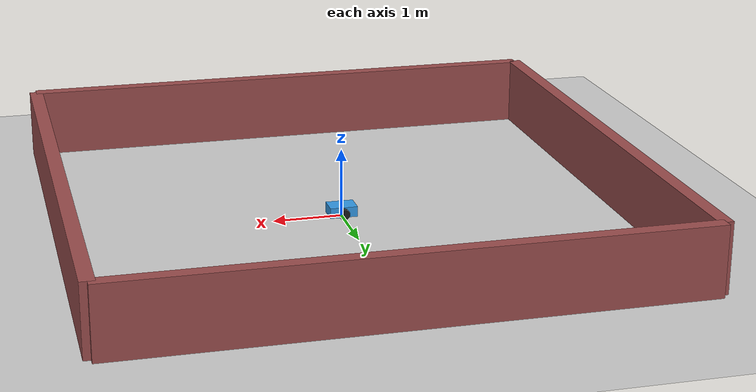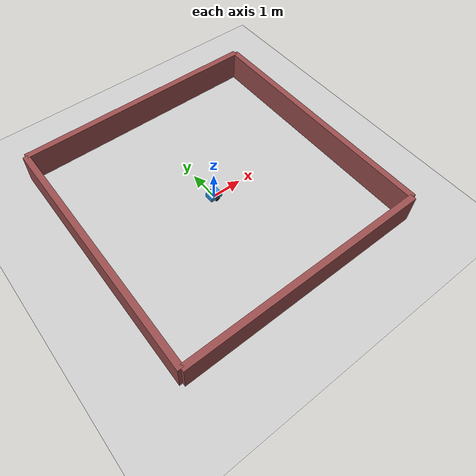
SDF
<?xml version="1.0" ?>
<sdf version="1.9">
  <world name="diffbot_world">

    <physics name="1ms" type="ignored">
      <max_step_size>0.001</max_step_size>
      <real_time_factor>1.0</real_time_factor>
    </physics>

    <plugin filename="gz-sim-physics-system" name="gz::sim::systems::Physics">
    </plugin>
    <plugin filename="gz-sim-sensors-system" name="gz::sim::systems::Sensors">
      <render_engine>ogre2</render_engine>
    </plugin>
    <plugin filename="gz-sim-scene-broadcaster-system" name="gz::sim::systems::SceneBroadcaster">
    </plugin>
    <plugin filename="gz-sim-user-commands-system" name="gz::sim::systems::UserCommands">
    </plugin>

    <light type="directional" name="sun">
      <cast_shadows>true</cast_shadows>
      <pose>0 0 10 0 0 0</pose>
      <diffuse>0.8 0.8 0.8 1</diffuse>
      <specular>0.2 0.2 0.2 1</specular>
      <attenuation>
        <range>1000</range>
        <constant>0.9</constant>
        <linear>0.01</linear>
        <quadratic>0.001</quadratic>
      </attenuation>
      <direction>-0.5 0.1 -0.9</direction>
    </light>

    <model name="ground_plane">
      <static>true</static>
      <link name="link">
        <collision name="collision">
          <geometry>
            <plane>
              <normal>0 0 1</normal>
              <size>100 100</size>
            </plane>
          </geometry>
        </collision>
        <visual name="visual">
          <geometry>
            <plane>
              <normal>0 0 1</normal>
              <size>100 100</size>
            </plane>
          </geometry>
          <material>
            <ambient>0.8 0.8 0.8 1</ambient>
            <diffuse>0.8 0.8 0.8 1</diffuse>
            <specular>0.8 0.8 0.8 1</specular>
          </material>
        </visual>
      </link>
    </model>

    <!-- A couple of boxes so the lidar returns finite ranges in all directions -->
    <model name="wall_north">
      <static>true</static>
      <pose>0 4 0.5 0 0 0</pose>
      <link name="link">
        <collision name="collision">
          <geometry><box><size>8 0.2 1</size></box></geometry>
        </collision>
        <visual name="visual">
          <geometry><box><size>8 0.2 1</size></box></geometry>
          <material><ambient>0.6 0.3 0.3 1</ambient><diffuse>0.6 0.3 0.3 1</diffuse></material>
        </visual>
      </link>
    </model>
    <model name="wall_south">
      <static>true</static>
      <pose>0 -4 0.5 0 0 0</pose>
      <link name="link">
        <collision name="collision">
          <geometry><box><size>8 0.2 1</size></box></geometry>
        </collision>
        <visual name="visual">
          <geometry><box><size>8 0.2 1</size></box></geometry>
          <material><ambient>0.6 0.3 0.3 1</ambient><diffuse>0.6 0.3 0.3 1</diffuse></material>
        </visual>
      </link>
    </model>
    <model name="wall_east">
      <static>true</static>
      <pose>4 0 0.5 0 0 1.5708</pose>
      <link name="link">
        <collision name="collision">
          <geometry><box><size>8 0.2 1</size></box></geometry>
        </collision>
        <visual name="visual">
          <geometry><box><size>8 0.2 1</size></box></geometry>
          <material><ambient>0.6 0.3 0.3 1</ambient><diffuse>0.6 0.3 0.3 1</diffuse></material>
        </visual>
      </link>
    </model>
    <model name="wall_west">
      <static>true</static>
      <pose>-4 0 0.5 0 0 1.5708</pose>
      <link name="link">
        <collision name="collision">
          <geometry><box><size>8 0.2 1</size></box></geometry>
        </collision>
        <visual name="visual">
          <geometry><box><size>8 0.2 1</size></box></geometry>
          <material><ambient>0.6 0.3 0.3 1</ambient><diffuse>0.6 0.3 0.3 1</diffuse></material>
        </visual>
      </link>
    </model>

    <model name="diffbot">
      <pose>0 0 0.1 0 0 0</pose>

      <link name="chassis">
        <pose>0 0 0 0 0 0</pose>
        <inertial>
          <mass>5.0</mass>
          <inertia>
            <ixx>0.0625</ixx>
            <ixy>0</ixy>
            <ixz>0</ixz>
            <iyy>0.0958</iyy>
            <iyz>0</iyz>
            <izz>0.15</izz>
          </inertia>
        </inertial>
        <visual name="visual">
          <geometry>
            <box><size>0.4 0.3 0.15</size></box>
          </geometry>
          <material>
            <ambient>0.2 0.6 0.9 1</ambient>
            <diffuse>0.2 0.6 0.9 1</diffuse>
            <specular>0.2 0.2 0.2 1</specular>
          </material>
        </visual>
        <collision name="collision">
          <geometry>
            <box><size>0.4 0.3 0.15</size></box>
          </geometry>
        </collision>

        <sensor name="gpu_lidar" type="gpu_lidar">
          <pose>0 0 0.12 0 0 0</pose>
          <topic>scan</topic>
          <update_rate>10</update_rate>
          <always_on>1</always_on>
          <visualize>false</visualize>
          <lidar>
            <scan>
              <horizontal>
                <samples>360</samples>
                <resolution>1</resolution>
                <min_angle>-3.14159265</min_angle>
                <max_angle>3.14159265</max_angle>
              </horizontal>
              <vertical>
                <samples>1</samples>
                <resolution>1</resolution>
                <min_angle>0</min_angle>
                <max_angle>0</max_angle>
              </vertical>
            </scan>
            <range>
              <min>0.08</min>
              <max>15.0</max>
              <resolution>0.01</resolution>
            </range>
          </lidar>
        </sensor>
      </link>

      <link name="left_wheel">
        <pose>0 0.175 -0.02 -1.5707963 0 0</pose>
        <inertial>
          <mass>0.5</mass>
          <inertia>
            <ixx>0.000526</ixx>
            <ixy>0</ixy>
            <ixz>0</ixz>
            <iyy>0.000526</iyy>
            <iyz>0</iyz>
            <izz>0.001</izz>
          </inertia>
        </inertial>
        <visual name="visual">
          <geometry>
            <cylinder><radius>0.08</radius><length>0.04</length></cylinder>
          </geometry>
          <material>
            <ambient>0.1 0.1 0.1 1</ambient>
            <diffuse>0.1 0.1 0.1 1</diffuse>
          </material>
        </visual>
        <collision name="collision">
          <geometry>
            <cylinder><radius>0.08</radius><length>0.04</length></cylinder>
          </geometry>
          <surface>
            <friction>
              <ode>
                <mu>1.0</mu>
                <mu2>1.0</mu2>
              </ode>
            </friction>
          </surface>
        </collision>
      </link>

      <link name="right_wheel">
        <pose>0 -0.175 -0.02 -1.5707963 0 0</pose>
        <inertial>
          <mass>0.5</mass>
          <inertia>
            <ixx>0.000526</ixx>
            <ixy>0</ixy>
            <ixz>0</ixz>
            <iyy>0.000526</iyy>
            <iyz>0</iyz>
            <izz>0.001</izz>
          </inertia>
        </inertial>
        <visual name="visual">
          <geometry>
            <cylinder><radius>0.08</radius><length>0.04</length></cylinder>
          </geometry>
          <material>
            <ambient>0.1 0.1 0.1 1</ambient>
            <diffuse>0.1 0.1 0.1 1</diffuse>
          </material>
        </visual>
        <collision name="collision">
          <geometry>
            <cylinder><radius>0.08</radius><length>0.04</length></cylinder>
          </geometry>
          <surface>
            <friction>
              <ode>
                <mu>1.0</mu>
                <mu2>1.0</mu2>
              </ode>
            </friction>
          </surface>
        </collision>
      </link>

      <link name="caster">
        <pose>0.15 0 -0.055 0 0 0</pose>
        <inertial>
          <mass>0.1</mass>
          <inertia>
            <ixx>0.0001</ixx>
            <ixy>0</ixy>
            <ixz>0</ixz>
            <iyy>0.0001</iyy>
            <iyz>0</iyz>
            <izz>0.0001</izz>
          </inertia>
        </inertial>
        <visual name="visual">
          <geometry><sphere><radius>0.045</radius></sphere></geometry>
          <material>
            <ambient>0.1 0.1 0.1 1</ambient>
            <diffuse>0.1 0.1 0.1 1</diffuse>
          </material>
        </visual>
        <collision name="collision">
          <geometry><sphere><radius>0.045</radius></sphere></geometry>
          <surface>
            <friction>
              <ode>
                <mu>0.01</mu>
                <mu2>0.01</mu2>
              </ode>
            </friction>
          </surface>
        </collision>
      </link>

      <joint name="left_wheel_joint" type="revolute">
        <parent>chassis</parent>
        <child>left_wheel</child>
        <axis>
          <xyz>0 0 1</xyz>
          <limit>
            <lower>-1.79769e+308</lower>
            <upper>1.79769e+308</upper>
          </limit>
        </axis>
      </joint>

      <joint name="right_wheel_joint" type="revolute">
        <parent>chassis</parent>
        <child>right_wheel</child>
        <axis>
          <xyz>0 0 1</xyz>
          <limit>
            <lower>-1.79769e+308</lower>
            <upper>1.79769e+308</upper>
          </limit>
        </axis>
      </joint>

      <joint name="caster_wheel" type="ball">
        <parent>chassis</parent>
        <child>caster</child>
      </joint>

      <plugin filename="gz-sim-diff-drive-system" name="gz::sim::systems::DiffDrive">
        <left_joint>left_wheel_joint</left_joint>
        <right_joint>right_wheel_joint</right_joint>
        <wheel_separation>0.35</wheel_separation>
        <wheel_radius>0.08</wheel_radius>
        <topic>cmd_vel</topic>
        <odom_topic>odom</odom_topic>
        <tf_topic>tf</tf_topic>
        <frame_id>odom</frame_id>
        <child_frame_id>diffbot/chassis</child_frame_id>
        <odom_publish_frequency>20</odom_publish_frequency>
        <max_linear_acceleration>3</max_linear_acceleration>
        <min_linear_acceleration>-3</min_linear_acceleration>
        <max_angular_acceleration>5</max_angular_acceleration>
        <min_angular_acceleration>-5</min_angular_acceleration>
        <max_linear_velocity>1.5</max_linear_velocity>
        <min_linear_velocity>-1.5</min_linear_velocity>
        <max_angular_velocity>2</max_angular_velocity>
        <min_angular_velocity>-2</min_angular_velocity>
      </plugin>

      <plugin filename="gz-sim-joint-state-publisher-system" name="gz::sim::systems::JointStatePublisher">
      </plugin>

    </model>

  </world>
</sdf>
